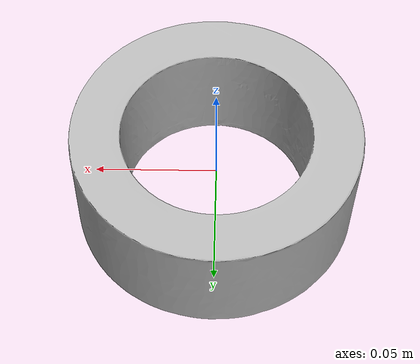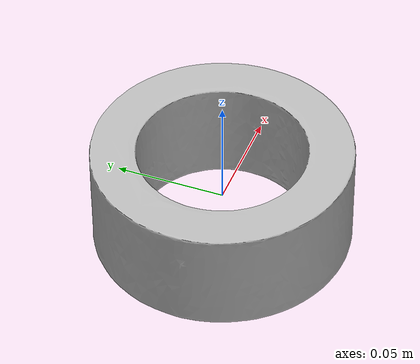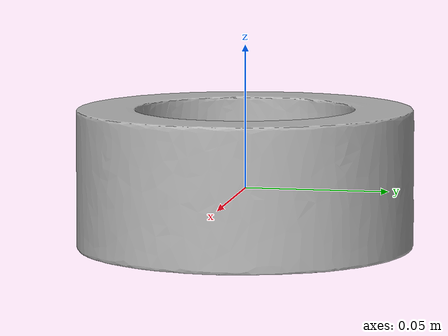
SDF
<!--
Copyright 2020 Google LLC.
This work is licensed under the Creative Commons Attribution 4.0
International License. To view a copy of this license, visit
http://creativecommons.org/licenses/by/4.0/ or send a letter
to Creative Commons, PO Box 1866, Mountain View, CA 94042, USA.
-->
<?xml version="1.0" ?>
<sdf version="1.6">
  <model name="Shurtape_Tape_Purple_CP28">
    <link name="link_0">
      <visual name="visual">
        <geometry>
          <mesh>
            <uri>meshes/model.obj</uri>
          </mesh>
        </geometry>
      </visual>
      <collision name="collision_0">
        <geometry>
          <mesh>
            <uri>meshes/model.obj</uri>
          </mesh>
        </geometry>
      </collision>
    </link>
  </model>
</sdf>
